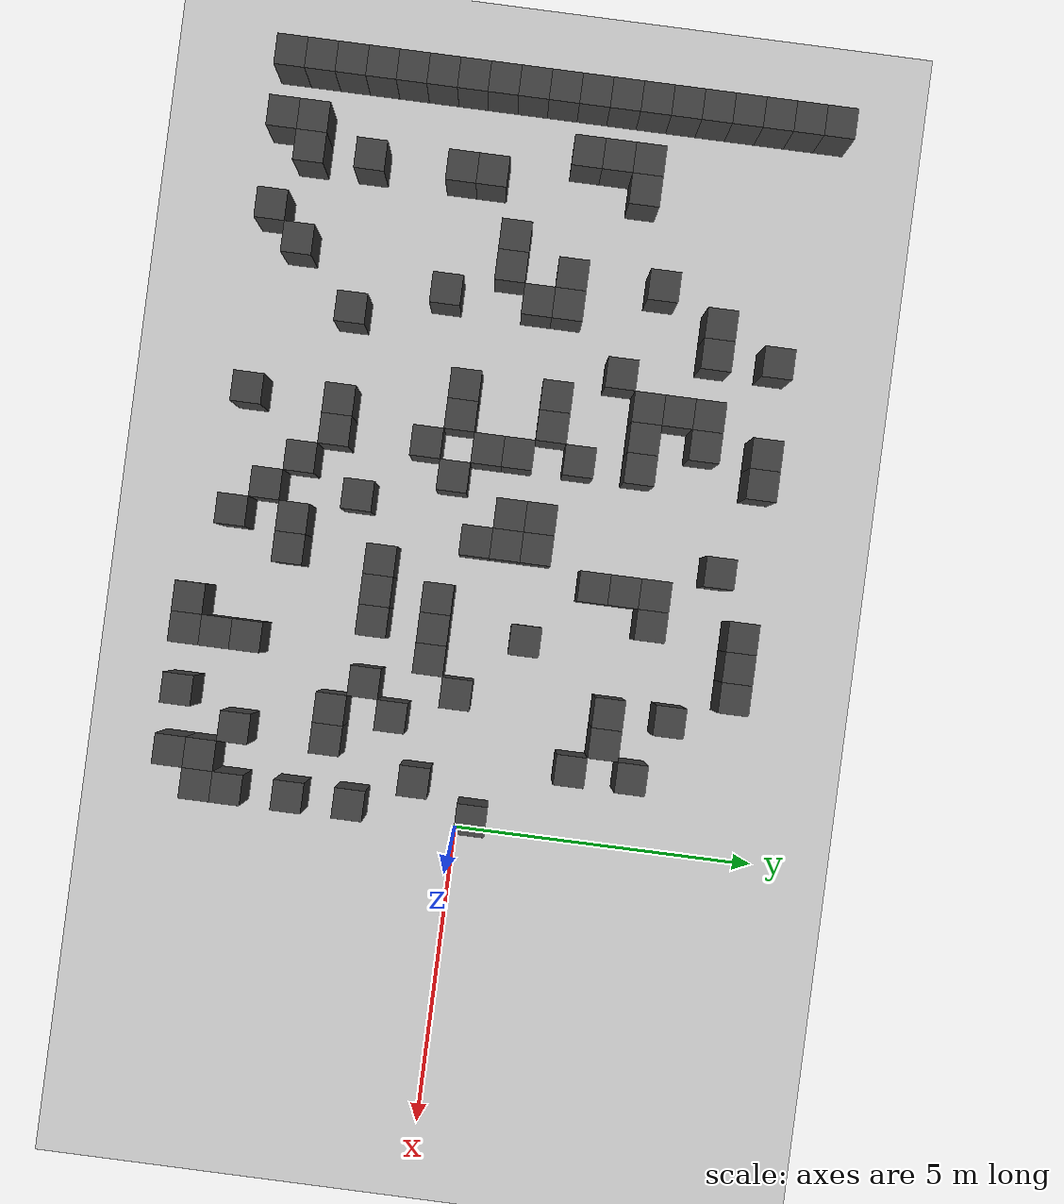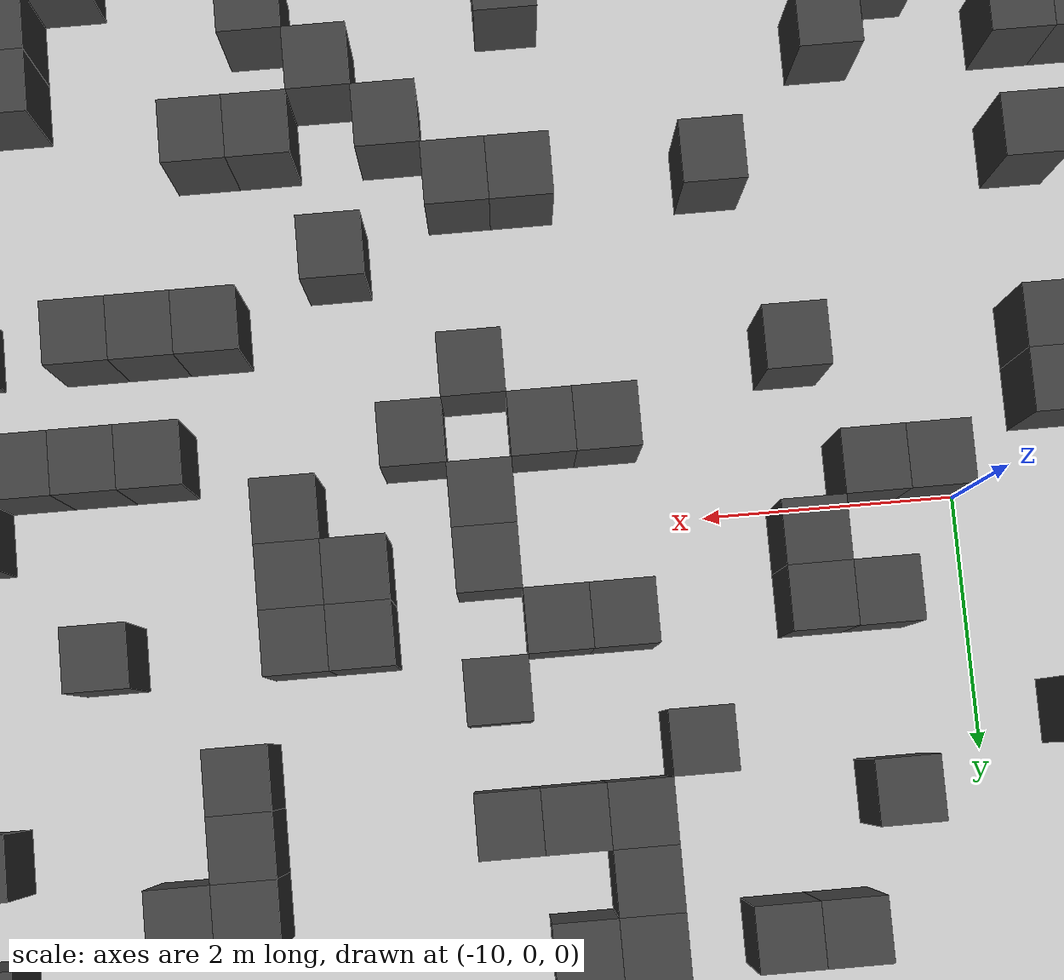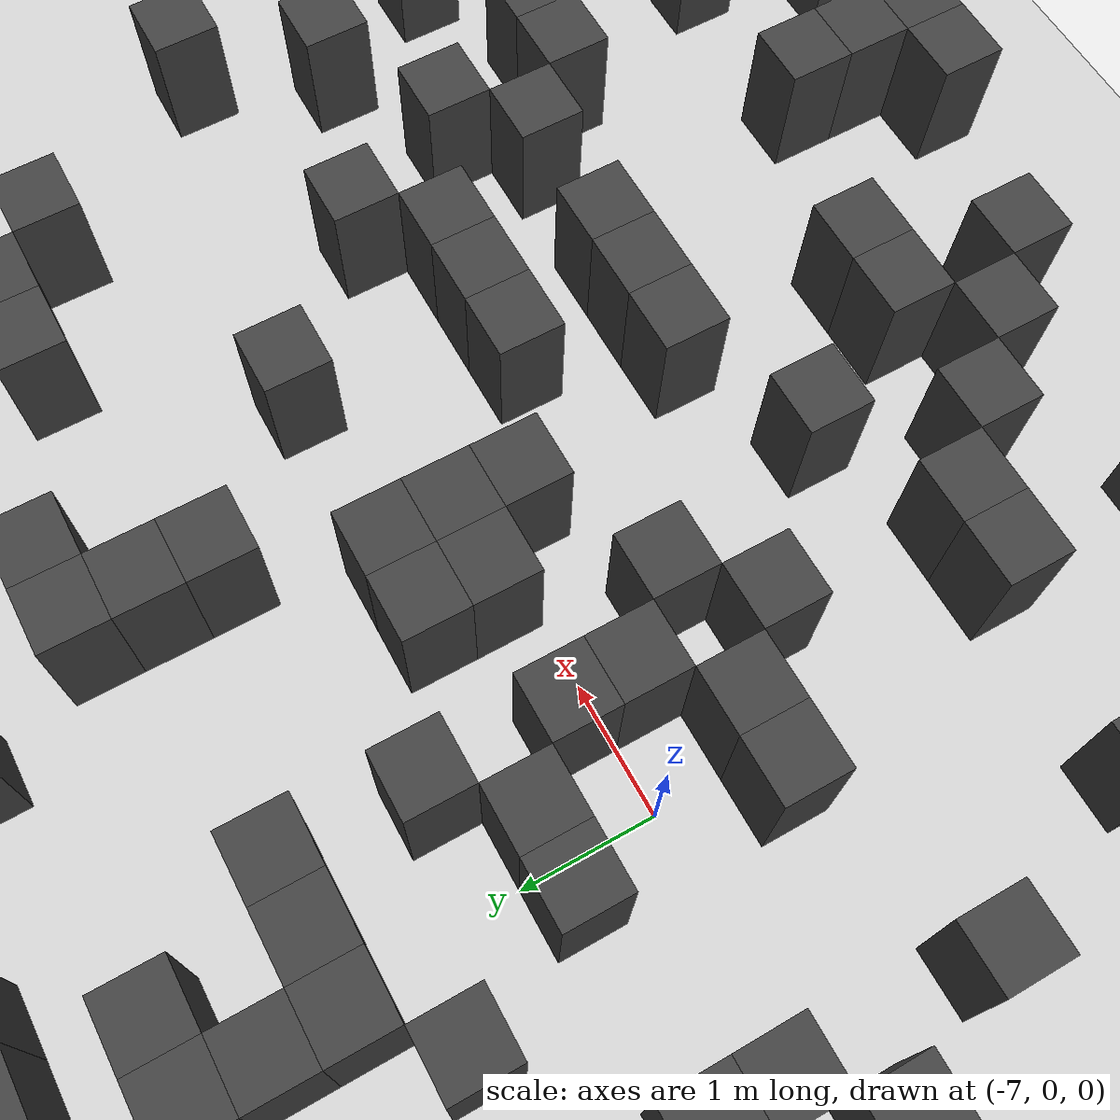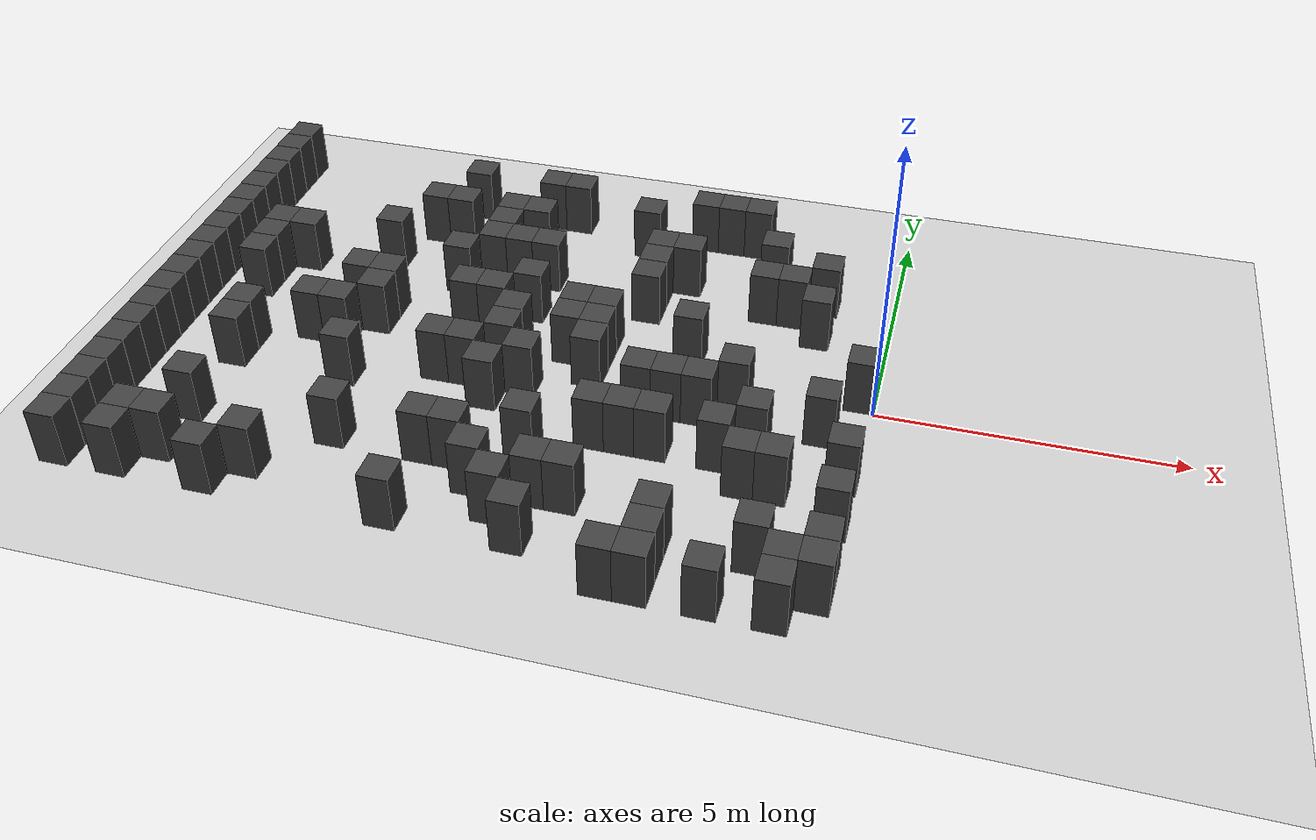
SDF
<sdf version="1.7">
 <world name="map_4302">
  <model name="ground_plane">
   <static>true</static>
   <link name="link">
    <collision name="collision">
     <geometry><plane><normal>0 0 1</normal><size>200 200</size></plane></geometry>
    </collision>
    <visual name="visual">
     <geometry><plane><normal>0 0 1</normal><size>200 200</size></plane></geometry>
     <material><ambient>0.8 0.8 0.8 1</ambient><diffuse>0.8 0.8 0.8 1</diffuse></material>
    </visual>
   </link>
  </model>
  <model name="maze_environment">
   <static>true</static>
   <link name="wall_213">
    <pose>-12.250 4.750 0.500 0 0 0</pose>
    <collision name="col"><geometry><box><size>0.5 0.5 1.0</size></box></geometry></collision>
    <visual name="vis">
     <geometry><box><size>0.5 0.5 1.0</size></box></geometry>
     <material><ambient>0.15 0.15 0.15 1</ambient><diffuse>0.25 0.25 0.25 1</diffuse></material>
    </visual>
   </link>
   <link name="wall_228">
    <pose>-12.250 4.250 0.500 0 0 0</pose>
    <collision name="col"><geometry><box><size>0.5 0.5 1.0</size></box></geometry></collision>
    <visual name="vis">
     <geometry><box><size>0.5 0.5 1.0</size></box></geometry>
     <material><ambient>0.15 0.15 0.15 1</ambient><diffuse>0.25 0.25 0.25 1</diffuse></material>
    </visual>
   </link>
   <link name="wall_229">
    <pose>-8.250 4.250 0.500 0 0 0</pose>
    <collision name="col"><geometry><box><size>0.5 0.5 1.0</size></box></geometry></collision>
    <visual name="vis">
     <geometry><box><size>0.5 0.5 1.0</size></box></geometry>
     <material><ambient>0.15 0.15 0.15 1</ambient><diffuse>0.25 0.25 0.25 1</diffuse></material>
    </visual>
   </link>
   <link name="wall_230">
    <pose>-6.750 4.250 0.500 0 0 0</pose>
    <collision name="col"><geometry><box><size>0.5 0.5 1.0</size></box></geometry></collision>
    <visual name="vis">
     <geometry><box><size>0.5 0.5 1.0</size></box></geometry>
     <material><ambient>0.15 0.15 0.15 1</ambient><diffuse>0.25 0.25 0.25 1</diffuse></material>
    </visual>
   </link>
   <link name="wall_231">
    <pose>-6.250 4.250 0.500 0 0 0</pose>
    <collision name="col"><geometry><box><size>0.5 0.5 1.0</size></box></geometry></collision>
    <visual name="vis">
     <geometry><box><size>0.5 0.5 1.0</size></box></geometry>
     <material><ambient>0.15 0.15 0.15 1</ambient><diffuse>0.25 0.25 0.25 1</diffuse></material>
    </visual>
   </link>
   <link name="wall_232">
    <pose>-3.750 4.250 0.500 0 0 0</pose>
    <collision name="col"><geometry><box><size>0.5 0.5 1.0</size></box></geometry></collision>
    <visual name="vis">
     <geometry><box><size>0.5 0.5 1.0</size></box></geometry>
     <material><ambient>0.15 0.15 0.15 1</ambient><diffuse>0.25 0.25 0.25 1</diffuse></material>
    </visual>
   </link>
   <link name="wall_233">
    <pose>-3.250 4.250 0.500 0 0 0</pose>
    <collision name="col"><geometry><box><size>0.5 0.5 1.0</size></box></geometry></collision>
    <visual name="vis">
     <geometry><box><size>0.5 0.5 1.0</size></box></geometry>
     <material><ambient>0.15 0.15 0.15 1</ambient><diffuse>0.25 0.25 0.25 1</diffuse></material>
    </visual>
   </link>
   <link name="wall_234">
    <pose>-2.750 4.250 0.500 0 0 0</pose>
    <collision name="col"><geometry><box><size>0.5 0.5 1.0</size></box></geometry></collision>
    <visual name="vis">
     <geometry><box><size>0.5 0.5 1.0</size></box></geometry>
     <material><ambient>0.15 0.15 0.15 1</ambient><diffuse>0.25 0.25 0.25 1</diffuse></material>
    </visual>
   </link>
   <link name="wall_240">
    <pose>-12.250 3.750 0.500 0 0 0</pose>
    <collision name="col"><geometry><box><size>0.5 0.5 1.0</size></box></geometry></collision>
    <visual name="vis">
     <geometry><box><size>0.5 0.5 1.0</size></box></geometry>
     <material><ambient>0.15 0.15 0.15 1</ambient><diffuse>0.25 0.25 0.25 1</diffuse></material>
    </visual>
   </link>
   <link name="wall_241">
    <pose>-4.750 3.750 0.500 0 0 0</pose>
    <collision name="col"><geometry><box><size>0.5 0.5 1.0</size></box></geometry></collision>
    <visual name="vis">
     <geometry><box><size>0.5 0.5 1.0</size></box></geometry>
     <material><ambient>0.15 0.15 0.15 1</ambient><diffuse>0.25 0.25 0.25 1</diffuse></material>
    </visual>
   </link>
   <link name="wall_244">
    <pose>-12.250 3.250 0.500 0 0 0</pose>
    <collision name="col"><geometry><box><size>0.5 0.5 1.0</size></box></geometry></collision>
    <visual name="vis">
     <geometry><box><size>0.5 0.5 1.0</size></box></geometry>
     <material><ambient>0.15 0.15 0.15 1</ambient><diffuse>0.25 0.25 0.25 1</diffuse></material>
    </visual>
   </link>
   <link name="wall_245">
    <pose>-8.750 3.250 0.500 0 0 0</pose>
    <collision name="col"><geometry><box><size>0.5 0.5 1.0</size></box></geometry></collision>
    <visual name="vis">
     <geometry><box><size>0.5 0.5 1.0</size></box></geometry>
     <material><ambient>0.15 0.15 0.15 1</ambient><diffuse>0.25 0.25 0.25 1</diffuse></material>
    </visual>
   </link>
   <link name="wall_246">
    <pose>-8.250 3.250 0.500 0 0 0</pose>
    <collision name="col"><geometry><box><size>0.5 0.5 1.0</size></box></geometry></collision>
    <visual name="vis">
     <geometry><box><size>0.5 0.5 1.0</size></box></geometry>
     <material><ambient>0.15 0.15 0.15 1</ambient><diffuse>0.25 0.25 0.25 1</diffuse></material>
    </visual>
   </link>
   <link name="wall_247">
    <pose>-7.250 3.250 0.500 0 0 0</pose>
    <collision name="col"><geometry><box><size>0.5 0.5 1.0</size></box></geometry></collision>
    <visual name="vis">
     <geometry><box><size>0.5 0.5 1.0</size></box></geometry>
     <material><ambient>0.15 0.15 0.15 1</ambient><diffuse>0.25 0.25 0.25 1</diffuse></material>
    </visual>
   </link>
   <link name="wall_248">
    <pose>-6.750 3.250 0.500 0 0 0</pose>
    <collision name="col"><geometry><box><size>0.5 0.5 1.0</size></box></geometry></collision>
    <visual name="vis">
     <geometry><box><size>0.5 0.5 1.0</size></box></geometry>
     <material><ambient>0.15 0.15 0.15 1</ambient><diffuse>0.25 0.25 0.25 1</diffuse></material>
    </visual>
   </link>
   <link name="wall_249">
    <pose>-2.250 3.250 0.500 0 0 0</pose>
    <collision name="col"><geometry><box><size>0.5 0.5 1.0</size></box></geometry></collision>
    <visual name="vis">
     <geometry><box><size>0.5 0.5 1.0</size></box></geometry>
     <material><ambient>0.15 0.15 0.15 1</ambient><diffuse>0.25 0.25 0.25 1</diffuse></material>
    </visual>
   </link>
   <link name="wall_255">
    <pose>-12.250 2.750 0.500 0 0 0</pose>
    <collision name="col"><geometry><box><size>0.5 0.5 1.0</size></box></geometry></collision>
    <visual name="vis">
     <geometry><box><size>0.5 0.5 1.0</size></box></geometry>
     <material><ambient>0.15 0.15 0.15 1</ambient><diffuse>0.25 0.25 0.25 1</diffuse></material>
    </visual>
   </link>
   <link name="wall_256">
    <pose>-7.250 2.750 0.500 0 0 0</pose>
    <collision name="col"><geometry><box><size>0.5 0.5 1.0</size></box></geometry></collision>
    <visual name="vis">
     <geometry><box><size>0.5 0.5 1.0</size></box></geometry>
     <material><ambient>0.15 0.15 0.15 1</ambient><diffuse>0.25 0.25 0.25 1</diffuse></material>
    </visual>
   </link>
   <link name="wall_257">
    <pose>-4.250 2.750 0.500 0 0 0</pose>
    <collision name="col"><geometry><box><size>0.5 0.5 1.0</size></box></geometry></collision>
    <visual name="vis">
     <geometry><box><size>0.5 0.5 1.0</size></box></geometry>
     <material><ambient>0.15 0.15 0.15 1</ambient><diffuse>0.25 0.25 0.25 1</diffuse></material>
    </visual>
   </link>
   <link name="wall_258">
    <pose>-3.750 2.750 0.500 0 0 0</pose>
    <collision name="col"><geometry><box><size>0.5 0.5 1.0</size></box></geometry></collision>
    <visual name="vis">
     <geometry><box><size>0.5 0.5 1.0</size></box></geometry>
     <material><ambient>0.15 0.15 0.15 1</ambient><diffuse>0.25 0.25 0.25 1</diffuse></material>
    </visual>
   </link>
   <link name="wall_259">
    <pose>-1.250 2.750 0.500 0 0 0</pose>
    <collision name="col"><geometry><box><size>0.5 0.5 1.0</size></box></geometry></collision>
    <visual name="vis">
     <geometry><box><size>0.5 0.5 1.0</size></box></geometry>
     <material><ambient>0.15 0.15 0.15 1</ambient><diffuse>0.25 0.25 0.25 1</diffuse></material>
    </visual>
   </link>
   <link name="wall_265">
    <pose>-12.250 2.250 0.500 0 0 0</pose>
    <collision name="col"><geometry><box><size>0.5 0.5 1.0</size></box></geometry></collision>
    <visual name="vis">
     <geometry><box><size>0.5 0.5 1.0</size></box></geometry>
     <material><ambient>0.15 0.15 0.15 1</ambient><diffuse>0.25 0.25 0.25 1</diffuse></material>
    </visual>
   </link>
   <link name="wall_266">
    <pose>-9.250 2.250 0.500 0 0 0</pose>
    <collision name="col"><geometry><box><size>0.5 0.5 1.0</size></box></geometry></collision>
    <visual name="vis">
     <geometry><box><size>0.5 0.5 1.0</size></box></geometry>
     <material><ambient>0.15 0.15 0.15 1</ambient><diffuse>0.25 0.25 0.25 1</diffuse></material>
    </visual>
   </link>
   <link name="wall_267">
    <pose>-7.250 2.250 0.500 0 0 0</pose>
    <collision name="col"><geometry><box><size>0.5 0.5 1.0</size></box></geometry></collision>
    <visual name="vis">
     <geometry><box><size>0.5 0.5 1.0</size></box></geometry>
     <material><ambient>0.15 0.15 0.15 1</ambient><diffuse>0.25 0.25 0.25 1</diffuse></material>
    </visual>
   </link>
   <link name="wall_268">
    <pose>-6.750 2.250 0.500 0 0 0</pose>
    <collision name="col"><geometry><box><size>0.5 0.5 1.0</size></box></geometry></collision>
    <visual name="vis">
     <geometry><box><size>0.5 0.5 1.0</size></box></geometry>
     <material><ambient>0.15 0.15 0.15 1</ambient><diffuse>0.25 0.25 0.25 1</diffuse></material>
    </visual>
   </link>
   <link name="wall_269">
    <pose>-6.250 2.250 0.500 0 0 0</pose>
    <collision name="col"><geometry><box><size>0.5 0.5 1.0</size></box></geometry></collision>
    <visual name="vis">
     <geometry><box><size>0.5 0.5 1.0</size></box></geometry>
     <material><ambient>0.15 0.15 0.15 1</ambient><diffuse>0.25 0.25 0.25 1</diffuse></material>
    </visual>
   </link>
   <link name="wall_270">
    <pose>-4.250 2.250 0.500 0 0 0</pose>
    <collision name="col"><geometry><box><size>0.5 0.5 1.0</size></box></geometry></collision>
    <visual name="vis">
     <geometry><box><size>0.5 0.5 1.0</size></box></geometry>
     <material><ambient>0.15 0.15 0.15 1</ambient><diffuse>0.25 0.25 0.25 1</diffuse></material>
    </visual>
   </link>
   <link name="wall_271">
    <pose>-2.250 2.250 0.500 0 0 0</pose>
    <collision name="col"><geometry><box><size>0.5 0.5 1.0</size></box></geometry></collision>
    <visual name="vis">
     <geometry><box><size>0.5 0.5 1.0</size></box></geometry>
     <material><ambient>0.15 0.15 0.15 1</ambient><diffuse>0.25 0.25 0.25 1</diffuse></material>
    </visual>
   </link>
   <link name="wall_272">
    <pose>-1.750 2.250 0.500 0 0 0</pose>
    <collision name="col"><geometry><box><size>0.5 0.5 1.0</size></box></geometry></collision>
    <visual name="vis">
     <geometry><box><size>0.5 0.5 1.0</size></box></geometry>
     <material><ambient>0.15 0.15 0.15 1</ambient><diffuse>0.25 0.25 0.25 1</diffuse></material>
    </visual>
   </link>
   <link name="wall_280">
    <pose>-12.250 1.750 0.500 0 0 0</pose>
    <collision name="col"><geometry><box><size>0.5 0.5 1.0</size></box></geometry></collision>
    <visual name="vis">
     <geometry><box><size>0.5 0.5 1.0</size></box></geometry>
     <material><ambient>0.15 0.15 0.15 1</ambient><diffuse>0.25 0.25 0.25 1</diffuse></material>
    </visual>
   </link>
   <link name="wall_281">
    <pose>-11.250 1.750 0.500 0 0 0</pose>
    <collision name="col"><geometry><box><size>0.5 0.5 1.0</size></box></geometry></collision>
    <visual name="vis">
     <geometry><box><size>0.5 0.5 1.0</size></box></geometry>
     <material><ambient>0.15 0.15 0.15 1</ambient><diffuse>0.25 0.25 0.25 1</diffuse></material>
    </visual>
   </link>
   <link name="wall_282">
    <pose>-10.750 1.750 0.500 0 0 0</pose>
    <collision name="col"><geometry><box><size>0.5 0.5 1.0</size></box></geometry></collision>
    <visual name="vis">
     <geometry><box><size>0.5 0.5 1.0</size></box></geometry>
     <material><ambient>0.15 0.15 0.15 1</ambient><diffuse>0.25 0.25 0.25 1</diffuse></material>
    </visual>
   </link>
   <link name="wall_283">
    <pose>-7.750 1.750 0.500 0 0 0</pose>
    <collision name="col"><geometry><box><size>0.5 0.5 1.0</size></box></geometry></collision>
    <visual name="vis">
     <geometry><box><size>0.5 0.5 1.0</size></box></geometry>
     <material><ambient>0.15 0.15 0.15 1</ambient><diffuse>0.25 0.25 0.25 1</diffuse></material>
    </visual>
   </link>
   <link name="wall_284">
    <pose>-4.250 1.750 0.500 0 0 0</pose>
    <collision name="col"><geometry><box><size>0.5 0.5 1.0</size></box></geometry></collision>
    <visual name="vis">
     <geometry><box><size>0.5 0.5 1.0</size></box></geometry>
     <material><ambient>0.15 0.15 0.15 1</ambient><diffuse>0.25 0.25 0.25 1</diffuse></material>
    </visual>
   </link>
   <link name="wall_285">
    <pose>-1.250 1.750 0.500 0 0 0</pose>
    <collision name="col"><geometry><box><size>0.5 0.5 1.0</size></box></geometry></collision>
    <visual name="vis">
     <geometry><box><size>0.5 0.5 1.0</size></box></geometry>
     <material><ambient>0.15 0.15 0.15 1</ambient><diffuse>0.25 0.25 0.25 1</diffuse></material>
    </visual>
   </link>
   <link name="wall_289">
    <pose>-12.250 1.250 0.500 0 0 0</pose>
    <collision name="col"><geometry><box><size>0.5 0.5 1.0</size></box></geometry></collision>
    <visual name="vis">
     <geometry><box><size>0.5 0.5 1.0</size></box></geometry>
     <material><ambient>0.15 0.15 0.15 1</ambient><diffuse>0.25 0.25 0.25 1</diffuse></material>
    </visual>
   </link>
   <link name="wall_290">
    <pose>-11.250 1.250 0.500 0 0 0</pose>
    <collision name="col"><geometry><box><size>0.5 0.5 1.0</size></box></geometry></collision>
    <visual name="vis">
     <geometry><box><size>0.5 0.5 1.0</size></box></geometry>
     <material><ambient>0.15 0.15 0.15 1</ambient><diffuse>0.25 0.25 0.25 1</diffuse></material>
    </visual>
   </link>
   <link name="wall_291">
    <pose>-6.250 1.250 0.500 0 0 0</pose>
    <collision name="col"><geometry><box><size>0.5 0.5 1.0</size></box></geometry></collision>
    <visual name="vis">
     <geometry><box><size>0.5 0.5 1.0</size></box></geometry>
     <material><ambient>0.15 0.15 0.15 1</ambient><diffuse>0.25 0.25 0.25 1</diffuse></material>
    </visual>
   </link>
   <link name="wall_298">
    <pose>-12.250 0.750 0.500 0 0 0</pose>
    <collision name="col"><geometry><box><size>0.5 0.5 1.0</size></box></geometry></collision>
    <visual name="vis">
     <geometry><box><size>0.5 0.5 1.0</size></box></geometry>
     <material><ambient>0.15 0.15 0.15 1</ambient><diffuse>0.25 0.25 0.25 1</diffuse></material>
    </visual>
   </link>
   <link name="wall_299">
    <pose>-11.250 0.750 0.500 0 0 0</pose>
    <collision name="col"><geometry><box><size>0.5 0.5 1.0</size></box></geometry></collision>
    <visual name="vis">
     <geometry><box><size>0.5 0.5 1.0</size></box></geometry>
     <material><ambient>0.15 0.15 0.15 1</ambient><diffuse>0.25 0.25 0.25 1</diffuse></material>
    </visual>
   </link>
   <link name="wall_300">
    <pose>-9.250 0.750 0.500 0 0 0</pose>
    <collision name="col"><geometry><box><size>0.5 0.5 1.0</size></box></geometry></collision>
    <visual name="vis">
     <geometry><box><size>0.5 0.5 1.0</size></box></geometry>
     <material><ambient>0.15 0.15 0.15 1</ambient><diffuse>0.25 0.25 0.25 1</diffuse></material>
    </visual>
   </link>
   <link name="wall_301">
    <pose>-8.750 0.750 0.500 0 0 0</pose>
    <collision name="col"><geometry><box><size>0.5 0.5 1.0</size></box></geometry></collision>
    <visual name="vis">
     <geometry><box><size>0.5 0.5 1.0</size></box></geometry>
     <material><ambient>0.15 0.15 0.15 1</ambient><diffuse>0.25 0.25 0.25 1</diffuse></material>
    </visual>
   </link>
   <link name="wall_302">
    <pose>-7.250 0.750 0.500 0 0 0</pose>
    <collision name="col"><geometry><box><size>0.5 0.5 1.0</size></box></geometry></collision>
    <visual name="vis">
     <geometry><box><size>0.5 0.5 1.0</size></box></geometry>
     <material><ambient>0.15 0.15 0.15 1</ambient><diffuse>0.25 0.25 0.25 1</diffuse></material>
    </visual>
   </link>
   <link name="wall_303">
    <pose>-6.750 0.750 0.500 0 0 0</pose>
    <collision name="col"><geometry><box><size>0.5 0.5 1.0</size></box></geometry></collision>
    <visual name="vis">
     <geometry><box><size>0.5 0.5 1.0</size></box></geometry>
     <material><ambient>0.15 0.15 0.15 1</ambient><diffuse>0.25 0.25 0.25 1</diffuse></material>
    </visual>
   </link>
   <link name="wall_304">
    <pose>-5.250 0.750 0.500 0 0 0</pose>
    <collision name="col"><geometry><box><size>0.5 0.5 1.0</size></box></geometry></collision>
    <visual name="vis">
     <geometry><box><size>0.5 0.5 1.0</size></box></geometry>
     <material><ambient>0.15 0.15 0.15 1</ambient><diffuse>0.25 0.25 0.25 1</diffuse></material>
    </visual>
   </link>
   <link name="wall_305">
    <pose>-4.750 0.750 0.500 0 0 0</pose>
    <collision name="col"><geometry><box><size>0.5 0.5 1.0</size></box></geometry></collision>
    <visual name="vis">
     <geometry><box><size>0.5 0.5 1.0</size></box></geometry>
     <material><ambient>0.15 0.15 0.15 1</ambient><diffuse>0.25 0.25 0.25 1</diffuse></material>
    </visual>
   </link>
   <link name="wall_306">
    <pose>-3.250 0.750 0.500 0 0 0</pose>
    <collision name="col"><geometry><box><size>0.5 0.5 1.0</size></box></geometry></collision>
    <visual name="vis">
     <geometry><box><size>0.5 0.5 1.0</size></box></geometry>
     <material><ambient>0.15 0.15 0.15 1</ambient><diffuse>0.25 0.25 0.25 1</diffuse></material>
    </visual>
   </link>
   <link name="wall_317">
    <pose>-12.250 0.250 0.500 0 0 0</pose>
    <collision name="col"><geometry><box><size>0.5 0.5 1.0</size></box></geometry></collision>
    <visual name="vis">
     <geometry><box><size>0.5 0.5 1.0</size></box></geometry>
     <material><ambient>0.15 0.15 0.15 1</ambient><diffuse>0.25 0.25 0.25 1</diffuse></material>
    </visual>
   </link>
   <link name="wall_318">
    <pose>-8.750 0.250 0.500 0 0 0</pose>
    <collision name="col"><geometry><box><size>0.5 0.5 1.0</size></box></geometry></collision>
    <visual name="vis">
     <geometry><box><size>0.5 0.5 1.0</size></box></geometry>
     <material><ambient>0.15 0.15 0.15 1</ambient><diffuse>0.25 0.25 0.25 1</diffuse></material>
    </visual>
   </link>
   <link name="wall_319">
    <pose>-6.250 0.250 0.500 0 0 0</pose>
    <collision name="col"><geometry><box><size>0.5 0.5 1.0</size></box></geometry></collision>
    <visual name="vis">
     <geometry><box><size>0.5 0.5 1.0</size></box></geometry>
     <material><ambient>0.15 0.15 0.15 1</ambient><diffuse>0.25 0.25 0.25 1</diffuse></material>
    </visual>
   </link>
   <link name="wall_320">
    <pose>-5.250 0.250 0.500 0 0 0</pose>
    <collision name="col"><geometry><box><size>0.5 0.5 1.0</size></box></geometry></collision>
    <visual name="vis">
     <geometry><box><size>0.5 0.5 1.0</size></box></geometry>
     <material><ambient>0.15 0.15 0.15 1</ambient><diffuse>0.25 0.25 0.25 1</diffuse></material>
    </visual>
   </link>
   <link name="wall_321">
    <pose>-4.750 0.250 0.500 0 0 0</pose>
    <collision name="col"><geometry><box><size>0.5 0.5 1.0</size></box></geometry></collision>
    <visual name="vis">
     <geometry><box><size>0.5 0.5 1.0</size></box></geometry>
     <material><ambient>0.15 0.15 0.15 1</ambient><diffuse>0.25 0.25 0.25 1</diffuse></material>
    </visual>
   </link>
   <link name="wall_322">
    <pose>-0.250 0.250 0.500 0 0 0</pose>
    <collision name="col"><geometry><box><size>0.5 0.5 1.0</size></box></geometry></collision>
    <visual name="vis">
     <geometry><box><size>0.5 0.5 1.0</size></box></geometry>
     <material><ambient>0.15 0.15 0.15 1</ambient><diffuse>0.25 0.25 0.25 1</diffuse></material>
    </visual>
   </link>
   <link name="wall_328">
    <pose>-12.250 -0.250 0.500 0 0 0</pose>
    <collision name="col"><geometry><box><size>0.5 0.5 1.0</size></box></geometry></collision>
    <visual name="vis">
     <geometry><box><size>0.5 0.5 1.0</size></box></geometry>
     <material><ambient>0.15 0.15 0.15 1</ambient><diffuse>0.25 0.25 0.25 1</diffuse></material>
    </visual>
   </link>
   <link name="wall_329">
    <pose>-9.750 -0.250 0.500 0 0 0</pose>
    <collision name="col"><geometry><box><size>0.5 0.5 1.0</size></box></geometry></collision>
    <visual name="vis">
     <geometry><box><size>0.5 0.5 1.0</size></box></geometry>
     <material><ambient>0.15 0.15 0.15 1</ambient><diffuse>0.25 0.25 0.25 1</diffuse></material>
    </visual>
   </link>
   <link name="wall_330">
    <pose>-9.250 -0.250 0.500 0 0 0</pose>
    <collision name="col"><geometry><box><size>0.5 0.5 1.0</size></box></geometry></collision>
    <visual name="vis">
     <geometry><box><size>0.5 0.5 1.0</size></box></geometry>
     <material><ambient>0.15 0.15 0.15 1</ambient><diffuse>0.25 0.25 0.25 1</diffuse></material>
    </visual>
   </link>
   <link name="wall_331">
    <pose>-6.250 -0.250 0.500 0 0 0</pose>
    <collision name="col"><geometry><box><size>0.5 0.5 1.0</size></box></geometry></collision>
    <visual name="vis">
     <geometry><box><size>0.5 0.5 1.0</size></box></geometry>
     <material><ambient>0.15 0.15 0.15 1</ambient><diffuse>0.25 0.25 0.25 1</diffuse></material>
    </visual>
   </link>
   <link name="wall_332">
    <pose>-4.750 -0.250 0.500 0 0 0</pose>
    <collision name="col"><geometry><box><size>0.5 0.5 1.0</size></box></geometry></collision>
    <visual name="vis">
     <geometry><box><size>0.5 0.5 1.0</size></box></geometry>
     <material><ambient>0.15 0.15 0.15 1</ambient><diffuse>0.25 0.25 0.25 1</diffuse></material>
    </visual>
   </link>
   <link name="wall_333">
    <pose>-2.250 -0.250 0.500 0 0 0</pose>
    <collision name="col"><geometry><box><size>0.5 0.5 1.0</size></box></geometry></collision>
    <visual name="vis">
     <geometry><box><size>0.5 0.5 1.0</size></box></geometry>
     <material><ambient>0.15 0.15 0.15 1</ambient><diffuse>0.25 0.25 0.25 1</diffuse></material>
    </visual>
   </link>
   <link name="wall_343">
    <pose>-12.250 -0.750 0.500 0 0 0</pose>
    <collision name="col"><geometry><box><size>0.5 0.5 1.0</size></box></geometry></collision>
    <visual name="vis">
     <geometry><box><size>0.5 0.5 1.0</size></box></geometry>
     <material><ambient>0.15 0.15 0.15 1</ambient><diffuse>0.25 0.25 0.25 1</diffuse></material>
    </visual>
   </link>
   <link name="wall_344">
    <pose>-10.750 -0.750 0.500 0 0 0</pose>
    <collision name="col"><geometry><box><size>0.5 0.5 1.0</size></box></geometry></collision>
    <visual name="vis">
     <geometry><box><size>0.5 0.5 1.0</size></box></geometry>
     <material><ambient>0.15 0.15 0.15 1</ambient><diffuse>0.25 0.25 0.25 1</diffuse></material>
    </visual>
   </link>
   <link name="wall_345">
    <pose>-7.250 -0.750 0.500 0 0 0</pose>
    <collision name="col"><geometry><box><size>0.5 0.5 1.0</size></box></geometry></collision>
    <visual name="vis">
     <geometry><box><size>0.5 0.5 1.0</size></box></geometry>
     <material><ambient>0.15 0.15 0.15 1</ambient><diffuse>0.25 0.25 0.25 1</diffuse></material>
    </visual>
   </link>
   <link name="wall_346">
    <pose>-6.750 -0.750 0.500 0 0 0</pose>
    <collision name="col"><geometry><box><size>0.5 0.5 1.0</size></box></geometry></collision>
    <visual name="vis">
     <geometry><box><size>0.5 0.5 1.0</size></box></geometry>
     <material><ambient>0.15 0.15 0.15 1</ambient><diffuse>0.25 0.25 0.25 1</diffuse></material>
    </visual>
   </link>
   <link name="wall_347">
    <pose>-5.750 -0.750 0.500 0 0 0</pose>
    <collision name="col"><geometry><box><size>0.5 0.5 1.0</size></box></geometry></collision>
    <visual name="vis">
     <geometry><box><size>0.5 0.5 1.0</size></box></geometry>
     <material><ambient>0.15 0.15 0.15 1</ambient><diffuse>0.25 0.25 0.25 1</diffuse></material>
    </visual>
   </link>
   <link name="wall_348">
    <pose>-3.750 -0.750 0.500 0 0 0</pose>
    <collision name="col"><geometry><box><size>0.5 0.5 1.0</size></box></geometry></collision>
    <visual name="vis">
     <geometry><box><size>0.5 0.5 1.0</size></box></geometry>
     <material><ambient>0.15 0.15 0.15 1</ambient><diffuse>0.25 0.25 0.25 1</diffuse></material>
    </visual>
   </link>
   <link name="wall_349">
    <pose>-3.250 -0.750 0.500 0 0 0</pose>
    <collision name="col"><geometry><box><size>0.5 0.5 1.0</size></box></geometry></collision>
    <visual name="vis">
     <geometry><box><size>0.5 0.5 1.0</size></box></geometry>
     <material><ambient>0.15 0.15 0.15 1</ambient><diffuse>0.25 0.25 0.25 1</diffuse></material>
    </visual>
   </link>
   <link name="wall_350">
    <pose>-2.750 -0.750 0.500 0 0 0</pose>
    <collision name="col"><geometry><box><size>0.5 0.5 1.0</size></box></geometry></collision>
    <visual name="vis">
     <geometry><box><size>0.5 0.5 1.0</size></box></geometry>
     <material><ambient>0.15 0.15 0.15 1</ambient><diffuse>0.25 0.25 0.25 1</diffuse></material>
    </visual>
   </link>
   <link name="wall_351">
    <pose>-0.750 -0.750 0.500 0 0 0</pose>
    <collision name="col"><geometry><box><size>0.5 0.5 1.0</size></box></geometry></collision>
    <visual name="vis">
     <geometry><box><size>0.5 0.5 1.0</size></box></geometry>
     <material><ambient>0.15 0.15 0.15 1</ambient><diffuse>0.25 0.25 0.25 1</diffuse></material>
    </visual>
   </link>
   <link name="wall_356">
    <pose>-12.250 -1.250 0.500 0 0 0</pose>
    <collision name="col"><geometry><box><size>0.5 0.5 1.0</size></box></geometry></collision>
    <visual name="vis">
     <geometry><box><size>0.5 0.5 1.0</size></box></geometry>
     <material><ambient>0.15 0.15 0.15 1</ambient><diffuse>0.25 0.25 0.25 1</diffuse></material>
    </visual>
   </link>
   <link name="wall_357">
    <pose>-10.750 -1.250 0.500 0 0 0</pose>
    <collision name="col"><geometry><box><size>0.5 0.5 1.0</size></box></geometry></collision>
    <visual name="vis">
     <geometry><box><size>0.5 0.5 1.0</size></box></geometry>
     <material><ambient>0.15 0.15 0.15 1</ambient><diffuse>0.25 0.25 0.25 1</diffuse></material>
    </visual>
   </link>
   <link name="wall_358">
    <pose>-8.750 -1.250 0.500 0 0 0</pose>
    <collision name="col"><geometry><box><size>0.5 0.5 1.0</size></box></geometry></collision>
    <visual name="vis">
     <geometry><box><size>0.5 0.5 1.0</size></box></geometry>
     <material><ambient>0.15 0.15 0.15 1</ambient><diffuse>0.25 0.25 0.25 1</diffuse></material>
    </visual>
   </link>
   <link name="wall_359">
    <pose>-6.250 -1.250 0.500 0 0 0</pose>
    <collision name="col"><geometry><box><size>0.5 0.5 1.0</size></box></geometry></collision>
    <visual name="vis">
     <geometry><box><size>0.5 0.5 1.0</size></box></geometry>
     <material><ambient>0.15 0.15 0.15 1</ambient><diffuse>0.25 0.25 0.25 1</diffuse></material>
    </visual>
   </link>
   <link name="wall_360">
    <pose>-1.750 -1.250 0.500 0 0 0</pose>
    <collision name="col"><geometry><box><size>0.5 0.5 1.0</size></box></geometry></collision>
    <visual name="vis">
     <geometry><box><size>0.5 0.5 1.0</size></box></geometry>
     <material><ambient>0.15 0.15 0.15 1</ambient><diffuse>0.25 0.25 0.25 1</diffuse></material>
    </visual>
   </link>
   <link name="wall_366">
    <pose>-12.250 -1.750 0.500 0 0 0</pose>
    <collision name="col"><geometry><box><size>0.5 0.5 1.0</size></box></geometry></collision>
    <visual name="vis">
     <geometry><box><size>0.5 0.5 1.0</size></box></geometry>
     <material><ambient>0.15 0.15 0.15 1</ambient><diffuse>0.25 0.25 0.25 1</diffuse></material>
    </visual>
   </link>
   <link name="wall_367">
    <pose>-4.250 -1.750 0.500 0 0 0</pose>
    <collision name="col"><geometry><box><size>0.5 0.5 1.0</size></box></geometry></collision>
    <visual name="vis">
     <geometry><box><size>0.5 0.5 1.0</size></box></geometry>
     <material><ambient>0.15 0.15 0.15 1</ambient><diffuse>0.25 0.25 0.25 1</diffuse></material>
    </visual>
   </link>
   <link name="wall_368">
    <pose>-3.750 -1.750 0.500 0 0 0</pose>
    <collision name="col"><geometry><box><size>0.5 0.5 1.0</size></box></geometry></collision>
    <visual name="vis">
     <geometry><box><size>0.5 0.5 1.0</size></box></geometry>
     <material><ambient>0.15 0.15 0.15 1</ambient><diffuse>0.25 0.25 0.25 1</diffuse></material>
    </visual>
   </link>
   <link name="wall_369">
    <pose>-3.250 -1.750 0.500 0 0 0</pose>
    <collision name="col"><geometry><box><size>0.5 0.5 1.0</size></box></geometry></collision>
    <visual name="vis">
     <geometry><box><size>0.5 0.5 1.0</size></box></geometry>
     <material><ambient>0.15 0.15 0.15 1</ambient><diffuse>0.25 0.25 0.25 1</diffuse></material>
    </visual>
   </link>
   <link name="wall_370">
    <pose>-2.250 -1.750 0.500 0 0 0</pose>
    <collision name="col"><geometry><box><size>0.5 0.5 1.0</size></box></geometry></collision>
    <visual name="vis">
     <geometry><box><size>0.5 0.5 1.0</size></box></geometry>
     <material><ambient>0.15 0.15 0.15 1</ambient><diffuse>0.25 0.25 0.25 1</diffuse></material>
    </visual>
   </link>
   <link name="wall_371">
    <pose>-0.250 -1.750 0.500 0 0 0</pose>
    <collision name="col"><geometry><box><size>0.5 0.5 1.0</size></box></geometry></collision>
    <visual name="vis">
     <geometry><box><size>0.5 0.5 1.0</size></box></geometry>
     <material><ambient>0.15 0.15 0.15 1</ambient><diffuse>0.25 0.25 0.25 1</diffuse></material>
    </visual>
   </link>
   <link name="wall_375">
    <pose>-12.250 -2.250 0.500 0 0 0</pose>
    <collision name="col"><geometry><box><size>0.5 0.5 1.0</size></box></geometry></collision>
    <visual name="vis">
     <geometry><box><size>0.5 0.5 1.0</size></box></geometry>
     <material><ambient>0.15 0.15 0.15 1</ambient><diffuse>0.25 0.25 0.25 1</diffuse></material>
    </visual>
   </link>
   <link name="wall_376">
    <pose>-5.250 -2.250 0.500 0 0 0</pose>
    <collision name="col"><geometry><box><size>0.5 0.5 1.0</size></box></geometry></collision>
    <visual name="vis">
     <geometry><box><size>0.5 0.5 1.0</size></box></geometry>
     <material><ambient>0.15 0.15 0.15 1</ambient><diffuse>0.25 0.25 0.25 1</diffuse></material>
    </visual>
   </link>
   <link name="wall_377">
    <pose>-1.750 -2.250 0.500 0 0 0</pose>
    <collision name="col"><geometry><box><size>0.5 0.5 1.0</size></box></geometry></collision>
    <visual name="vis">
     <geometry><box><size>0.5 0.5 1.0</size></box></geometry>
     <material><ambient>0.15 0.15 0.15 1</ambient><diffuse>0.25 0.25 0.25 1</diffuse></material>
    </visual>
   </link>
   <link name="wall_378">
    <pose>-1.250 -2.250 0.500 0 0 0</pose>
    <collision name="col"><geometry><box><size>0.5 0.5 1.0</size></box></geometry></collision>
    <visual name="vis">
     <geometry><box><size>0.5 0.5 1.0</size></box></geometry>
     <material><ambient>0.15 0.15 0.15 1</ambient><diffuse>0.25 0.25 0.25 1</diffuse></material>
    </visual>
   </link>
   <link name="wall_387">
    <pose>-12.250 -2.750 0.500 0 0 0</pose>
    <collision name="col"><geometry><box><size>0.5 0.5 1.0</size></box></geometry></collision>
    <visual name="vis">
     <geometry><box><size>0.5 0.5 1.0</size></box></geometry>
     <material><ambient>0.15 0.15 0.15 1</ambient><diffuse>0.25 0.25 0.25 1</diffuse></material>
    </visual>
   </link>
   <link name="wall_388">
    <pose>-10.750 -2.750 0.500 0 0 0</pose>
    <collision name="col"><geometry><box><size>0.5 0.5 1.0</size></box></geometry></collision>
    <visual name="vis">
     <geometry><box><size>0.5 0.5 1.0</size></box></geometry>
     <material><ambient>0.15 0.15 0.15 1</ambient><diffuse>0.25 0.25 0.25 1</diffuse></material>
    </visual>
   </link>
   <link name="wall_389">
    <pose>-8.250 -2.750 0.500 0 0 0</pose>
    <collision name="col"><geometry><box><size>0.5 0.5 1.0</size></box></geometry></collision>
    <visual name="vis">
     <geometry><box><size>0.5 0.5 1.0</size></box></geometry>
     <material><ambient>0.15 0.15 0.15 1</ambient><diffuse>0.25 0.25 0.25 1</diffuse></material>
    </visual>
   </link>
   <link name="wall_390">
    <pose>-6.750 -2.750 0.500 0 0 0</pose>
    <collision name="col"><geometry><box><size>0.5 0.5 1.0</size></box></geometry></collision>
    <visual name="vis">
     <geometry><box><size>0.5 0.5 1.0</size></box></geometry>
     <material><ambient>0.15 0.15 0.15 1</ambient><diffuse>0.25 0.25 0.25 1</diffuse></material>
    </visual>
   </link>
   <link name="wall_391">
    <pose>-6.250 -2.750 0.500 0 0 0</pose>
    <collision name="col"><geometry><box><size>0.5 0.5 1.0</size></box></geometry></collision>
    <visual name="vis">
     <geometry><box><size>0.5 0.5 1.0</size></box></geometry>
     <material><ambient>0.15 0.15 0.15 1</ambient><diffuse>0.25 0.25 0.25 1</diffuse></material>
    </visual>
   </link>
   <link name="wall_392">
    <pose>-0.250 -2.750 0.500 0 0 0</pose>
    <collision name="col"><geometry><box><size>0.5 0.5 1.0</size></box></geometry></collision>
    <visual name="vis">
     <geometry><box><size>0.5 0.5 1.0</size></box></geometry>
     <material><ambient>0.15 0.15 0.15 1</ambient><diffuse>0.25 0.25 0.25 1</diffuse></material>
    </visual>
   </link>
   <link name="wall_398">
    <pose>-12.250 -3.250 0.500 0 0 0</pose>
    <collision name="col"><geometry><box><size>0.5 0.5 1.0</size></box></geometry></collision>
    <visual name="vis">
     <geometry><box><size>0.5 0.5 1.0</size></box></geometry>
     <material><ambient>0.15 0.15 0.15 1</ambient><diffuse>0.25 0.25 0.25 1</diffuse></material>
    </visual>
   </link>
   <link name="wall_399">
    <pose>-5.750 -3.250 0.500 0 0 0</pose>
    <collision name="col"><geometry><box><size>0.5 0.5 1.0</size></box></geometry></collision>
    <visual name="vis">
     <geometry><box><size>0.5 0.5 1.0</size></box></geometry>
     <material><ambient>0.15 0.15 0.15 1</ambient><diffuse>0.25 0.25 0.25 1</diffuse></material>
    </visual>
   </link>
   <link name="wall_400">
    <pose>-4.750 -3.250 0.500 0 0 0</pose>
    <collision name="col"><geometry><box><size>0.5 0.5 1.0</size></box></geometry></collision>
    <visual name="vis">
     <geometry><box><size>0.5 0.5 1.0</size></box></geometry>
     <material><ambient>0.15 0.15 0.15 1</ambient><diffuse>0.25 0.25 0.25 1</diffuse></material>
    </visual>
   </link>
   <link name="wall_401">
    <pose>-4.250 -3.250 0.500 0 0 0</pose>
    <collision name="col"><geometry><box><size>0.5 0.5 1.0</size></box></geometry></collision>
    <visual name="vis">
     <geometry><box><size>0.5 0.5 1.0</size></box></geometry>
     <material><ambient>0.15 0.15 0.15 1</ambient><diffuse>0.25 0.25 0.25 1</diffuse></material>
    </visual>
   </link>
   <link name="wall_408">
    <pose>-12.250 -3.750 0.500 0 0 0</pose>
    <collision name="col"><geometry><box><size>0.5 0.5 1.0</size></box></geometry></collision>
    <visual name="vis">
     <geometry><box><size>0.5 0.5 1.0</size></box></geometry>
     <material><ambient>0.15 0.15 0.15 1</ambient><diffuse>0.25 0.25 0.25 1</diffuse></material>
    </visual>
   </link>
   <link name="wall_409">
    <pose>-11.250 -3.750 0.500 0 0 0</pose>
    <collision name="col"><geometry><box><size>0.5 0.5 1.0</size></box></geometry></collision>
    <visual name="vis">
     <geometry><box><size>0.5 0.5 1.0</size></box></geometry>
     <material><ambient>0.15 0.15 0.15 1</ambient><diffuse>0.25 0.25 0.25 1</diffuse></material>
    </visual>
   </link>
   <link name="wall_410">
    <pose>-10.750 -3.750 0.500 0 0 0</pose>
    <collision name="col"><geometry><box><size>0.5 0.5 1.0</size></box></geometry></collision>
    <visual name="vis">
     <geometry><box><size>0.5 0.5 1.0</size></box></geometry>
     <material><ambient>0.15 0.15 0.15 1</ambient><diffuse>0.25 0.25 0.25 1</diffuse></material>
    </visual>
   </link>
   <link name="wall_411">
    <pose>-9.250 -3.750 0.500 0 0 0</pose>
    <collision name="col"><geometry><box><size>0.5 0.5 1.0</size></box></geometry></collision>
    <visual name="vis">
     <geometry><box><size>0.5 0.5 1.0</size></box></geometry>
     <material><ambient>0.15 0.15 0.15 1</ambient><diffuse>0.25 0.25 0.25 1</diffuse></material>
    </visual>
   </link>
   <link name="wall_412">
    <pose>-5.250 -3.750 0.500 0 0 0</pose>
    <collision name="col"><geometry><box><size>0.5 0.5 1.0</size></box></geometry></collision>
    <visual name="vis">
     <geometry><box><size>0.5 0.5 1.0</size></box></geometry>
     <material><ambient>0.15 0.15 0.15 1</ambient><diffuse>0.25 0.25 0.25 1</diffuse></material>
    </visual>
   </link>
   <link name="wall_413">
    <pose>-2.750 -3.750 0.500 0 0 0</pose>
    <collision name="col"><geometry><box><size>0.5 0.5 1.0</size></box></geometry></collision>
    <visual name="vis">
     <geometry><box><size>0.5 0.5 1.0</size></box></geometry>
     <material><ambient>0.15 0.15 0.15 1</ambient><diffuse>0.25 0.25 0.25 1</diffuse></material>
    </visual>
   </link>
   <link name="wall_414">
    <pose>-1.250 -3.750 0.500 0 0 0</pose>
    <collision name="col"><geometry><box><size>0.5 0.5 1.0</size></box></geometry></collision>
    <visual name="vis">
     <geometry><box><size>0.5 0.5 1.0</size></box></geometry>
     <material><ambient>0.15 0.15 0.15 1</ambient><diffuse>0.25 0.25 0.25 1</diffuse></material>
    </visual>
   </link>
   <link name="wall_415">
    <pose>-0.250 -3.750 0.500 0 0 0</pose>
    <collision name="col"><geometry><box><size>0.5 0.5 1.0</size></box></geometry></collision>
    <visual name="vis">
     <geometry><box><size>0.5 0.5 1.0</size></box></geometry>
     <material><ambient>0.15 0.15 0.15 1</ambient><diffuse>0.25 0.25 0.25 1</diffuse></material>
    </visual>
   </link>
   <link name="wall_426">
    <pose>-12.250 -4.250 0.500 0 0 0</pose>
    <collision name="col"><geometry><box><size>0.5 0.5 1.0</size></box></geometry></collision>
    <visual name="vis">
     <geometry><box><size>0.5 0.5 1.0</size></box></geometry>
     <material><ambient>0.15 0.15 0.15 1</ambient><diffuse>0.25 0.25 0.25 1</diffuse></material>
    </visual>
   </link>
   <link name="wall_427">
    <pose>-11.250 -4.250 0.500 0 0 0</pose>
    <collision name="col"><geometry><box><size>0.5 0.5 1.0</size></box></geometry></collision>
    <visual name="vis">
     <geometry><box><size>0.5 0.5 1.0</size></box></geometry>
     <material><ambient>0.15 0.15 0.15 1</ambient><diffuse>0.25 0.25 0.25 1</diffuse></material>
    </visual>
   </link>
   <link name="wall_428">
    <pose>-9.750 -4.250 0.500 0 0 0</pose>
    <collision name="col"><geometry><box><size>0.5 0.5 1.0</size></box></geometry></collision>
    <visual name="vis">
     <geometry><box><size>0.5 0.5 1.0</size></box></geometry>
     <material><ambient>0.15 0.15 0.15 1</ambient><diffuse>0.25 0.25 0.25 1</diffuse></material>
    </visual>
   </link>
   <link name="wall_429">
    <pose>-6.750 -4.250 0.500 0 0 0</pose>
    <collision name="col"><geometry><box><size>0.5 0.5 1.0</size></box></geometry></collision>
    <visual name="vis">
     <geometry><box><size>0.5 0.5 1.0</size></box></geometry>
     <material><ambient>0.15 0.15 0.15 1</ambient><diffuse>0.25 0.25 0.25 1</diffuse></material>
    </visual>
   </link>
   <link name="wall_430">
    <pose>-4.750 -4.250 0.500 0 0 0</pose>
    <collision name="col"><geometry><box><size>0.5 0.5 1.0</size></box></geometry></collision>
    <visual name="vis">
     <geometry><box><size>0.5 0.5 1.0</size></box></geometry>
     <material><ambient>0.15 0.15 0.15 1</ambient><diffuse>0.25 0.25 0.25 1</diffuse></material>
    </visual>
   </link>
   <link name="wall_431">
    <pose>-2.750 -4.250 0.500 0 0 0</pose>
    <collision name="col"><geometry><box><size>0.5 0.5 1.0</size></box></geometry></collision>
    <visual name="vis">
     <geometry><box><size>0.5 0.5 1.0</size></box></geometry>
     <material><ambient>0.15 0.15 0.15 1</ambient><diffuse>0.25 0.25 0.25 1</diffuse></material>
    </visual>
   </link>
   <link name="wall_432">
    <pose>-0.750 -4.250 0.500 0 0 0</pose>
    <collision name="col"><geometry><box><size>0.5 0.5 1.0</size></box></geometry></collision>
    <visual name="vis">
     <geometry><box><size>0.5 0.5 1.0</size></box></geometry>
     <material><ambient>0.15 0.15 0.15 1</ambient><diffuse>0.25 0.25 0.25 1</diffuse></material>
    </visual>
   </link>
   <link name="wall_433">
    <pose>-0.250 -4.250 0.500 0 0 0</pose>
    <collision name="col"><geometry><box><size>0.5 0.5 1.0</size></box></geometry></collision>
    <visual name="vis">
     <geometry><box><size>0.5 0.5 1.0</size></box></geometry>
     <material><ambient>0.15 0.15 0.15 1</ambient><diffuse>0.25 0.25 0.25 1</diffuse></material>
    </visual>
   </link>
   <link name="wall_442">
    <pose>-3.250 -4.750 0.500 0 0 0</pose>
    <collision name="col"><geometry><box><size>0.5 0.5 1.0</size></box></geometry></collision>
    <visual name="vis">
     <geometry><box><size>0.5 0.5 1.0</size></box></geometry>
     <material><ambient>0.15 0.15 0.15 1</ambient><diffuse>0.25 0.25 0.25 1</diffuse></material>
    </visual>
   </link>
   <link name="wall_443">
    <pose>-2.750 -4.750 0.500 0 0 0</pose>
    <collision name="col"><geometry><box><size>0.5 0.5 1.0</size></box></geometry></collision>
    <visual name="vis">
     <geometry><box><size>0.5 0.5 1.0</size></box></geometry>
     <material><ambient>0.15 0.15 0.15 1</ambient><diffuse>0.25 0.25 0.25 1</diffuse></material>
    </visual>
   </link>
   <link name="wall_444">
    <pose>-1.750 -4.750 0.500 0 0 0</pose>
    <collision name="col"><geometry><box><size>0.5 0.5 1.0</size></box></geometry></collision>
    <visual name="vis">
     <geometry><box><size>0.5 0.5 1.0</size></box></geometry>
     <material><ambient>0.15 0.15 0.15 1</ambient><diffuse>0.25 0.25 0.25 1</diffuse></material>
    </visual>
   </link>
   <link name="wall_445">
    <pose>-0.750 -4.750 0.500 0 0 0</pose>
    <collision name="col"><geometry><box><size>0.5 0.5 1.0</size></box></geometry></collision>
    <visual name="vis">
     <geometry><box><size>0.5 0.5 1.0</size></box></geometry>
     <material><ambient>0.15 0.15 0.15 1</ambient><diffuse>0.25 0.25 0.25 1</diffuse></material>
    </visual>
   </link>
  </model>
 </world>
</sdf>
